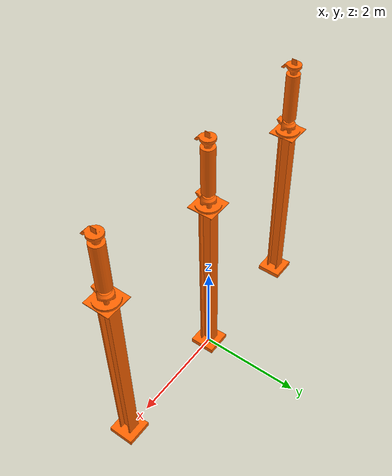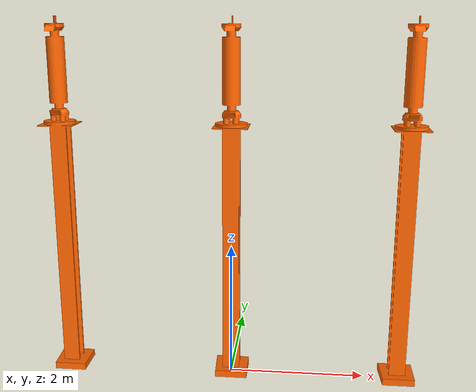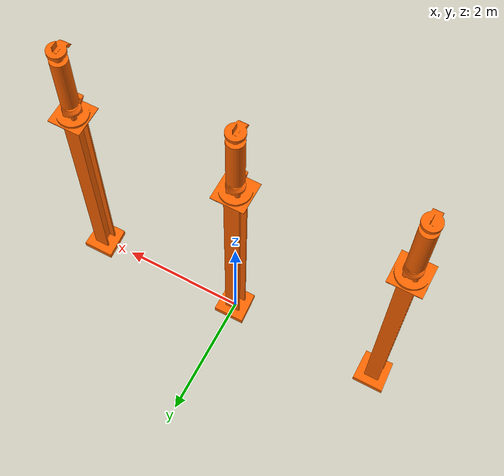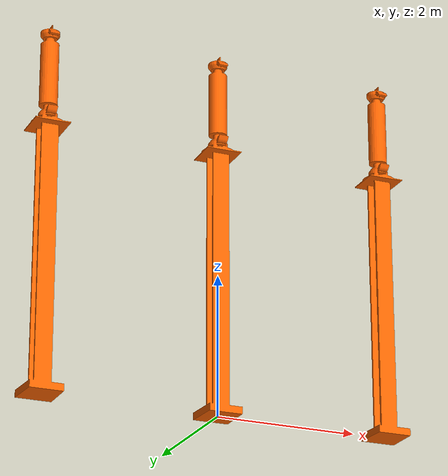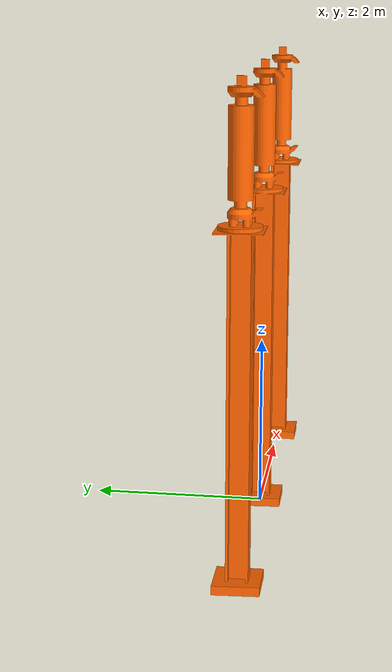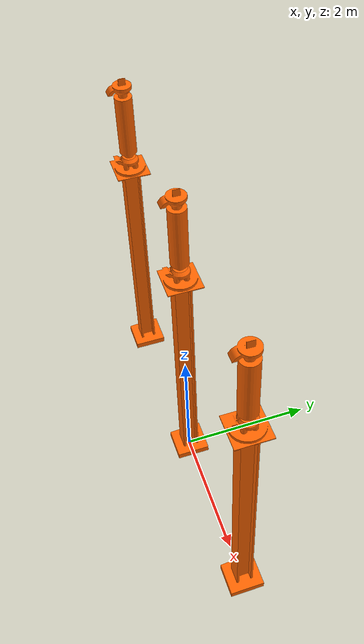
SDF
<?xml version="1.0" ?>
<sdf version="1.8">
  <model name="Electrical_Array_1">
    <static>true</static>
    <link name="link">
      <collision name="collision">
        <geometry>
          <mesh>
            <uri>model://Electrical_Array_1/Meshes/Electrical_Array_1.stl</uri>
            <scale>0.001 0.001 0.001</scale>
          </mesh>
        </geometry>
      </collision>

      <visual name="visual">
        <geometry>
          <mesh>
            <uri>model://Electrical_Array_1/Meshes/Electrical_Array_1.stl</uri>
            <scale>0.001 0.001 0.001</scale>
          </mesh>
        </geometry>
        <material>
          <diffuse>1.0 0.39 0.0 1.0</diffuse>
        </material>
      </visual>
    </link>
  </model>
</sdf>
